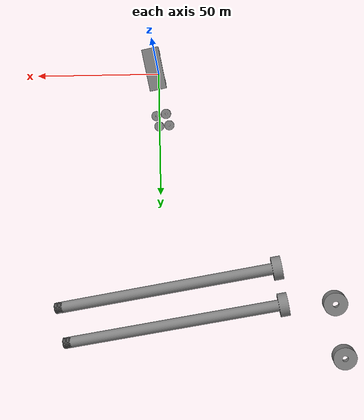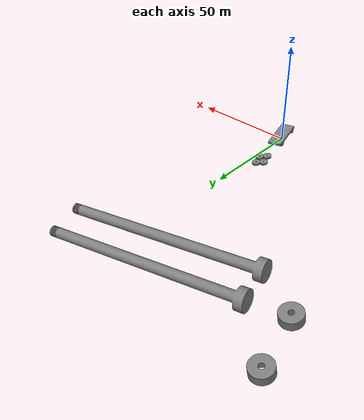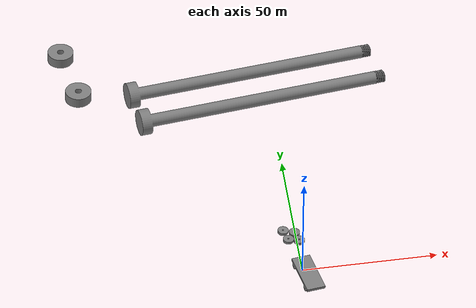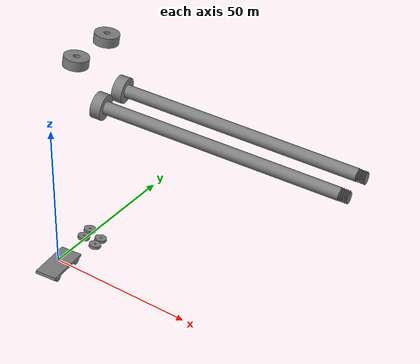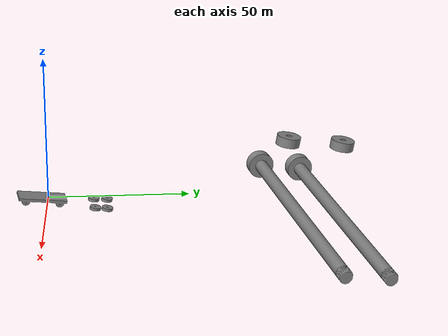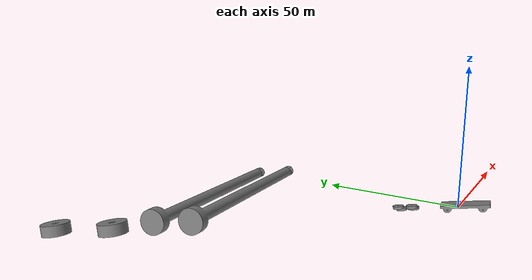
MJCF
<mujoco model="plank_car_assembly">
  <compiler angle="radian"
            meshdir="../../assets/plank_car"/>

  <asset>
    <mesh name="body"   file="body.obj" scale="0.1 0.1 0.1"/>
    <mesh name="wheel1" file="wheel1.obj" scale="0.1 0.1 0.1"/>
    <mesh name="wheel2" file="wheel2.obj" scale="0.1 0.1 0.1"/>
    <mesh name="wheel3" file="wheel3.obj" scale="0.1 0.1 0.1"/>
    <mesh name="wheel4" file="wheel4.obj" scale="0.1 0.1 0.1"/>
    <mesh name="A1" file="A1.obj"/>
    <mesh name="A2" file="A2.obj"/>
    <mesh name="B1" file="B1.obj"/>
    <mesh name="B2" file="B2.obj"/>
  </asset>

  <worldbody>
    <!-- 车体 -->
    <body name="body" pos="0 0 0.05"  euler="1.5708 0 0">
      <freejoint/>
      <geom type="mesh" mesh="body"/>
    </body>

    <!-- 轮子 -->
    <body name="wheel1" pos="0.2 0.1 0.05"  euler="1.5708 0 0">
      <freejoint/>
      <geom type="mesh" mesh="wheel1"/>
    </body>

    <body name="wheel2" pos="0.2 -0.1 0.05"  euler="1.5708 0 0">
      <freejoint/>
      <geom type="mesh" mesh="wheel2"/>
    </body>

    <body name="wheel3" pos="-0.2 0.1 0.05"  euler="1.5708 0 0">
      <freejoint/>
      <geom type="mesh" mesh="wheel3"/>
    </body>

    <body name="wheel4" pos="-0.2 -0.1 0.05"  euler="1.5708 0 0">
      <freejoint/>
      <geom type="mesh" mesh="wheel4"/>
    </body>

    <!-- 其他结构件 -->
    <body name="A1" pos="0.3 0 0.05"  euler="1.5708 0 0">
      <freejoint/>
      <geom type="mesh" mesh="A1"/>
    </body>

    <body name="A2" pos="0.35 0 0.05"  euler="1.5708 0 0">
      <freejoint/>
      <geom type="mesh" mesh="A2"/>
    </body>

    <body name="B1" pos="-0.3 0 0.05"  euler="1.5708 0 0">
      <freejoint/>
      <geom type="mesh" mesh="B1"/>
    </body>

    <body name="B2" pos="-0.35 0 0.05"  euler="1.5708 0 0">
      <freejoint/>
      <geom type="mesh" mesh="B2"/>
    </body>

  </worldbody>
</mujoco>
